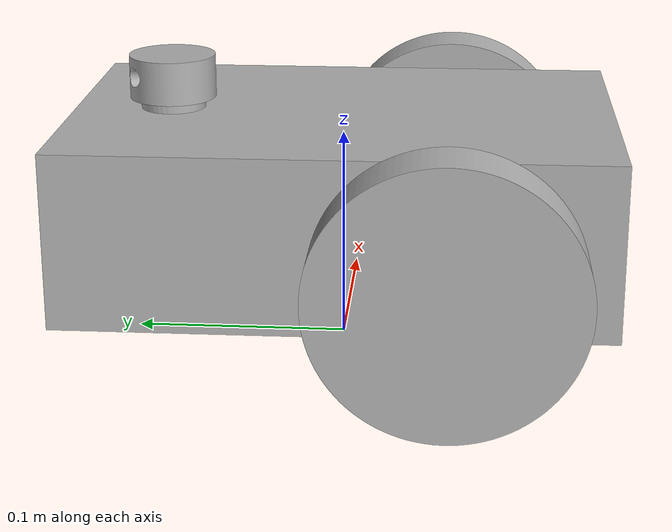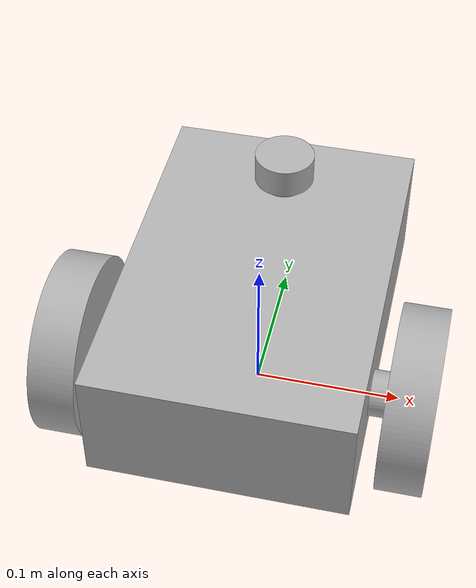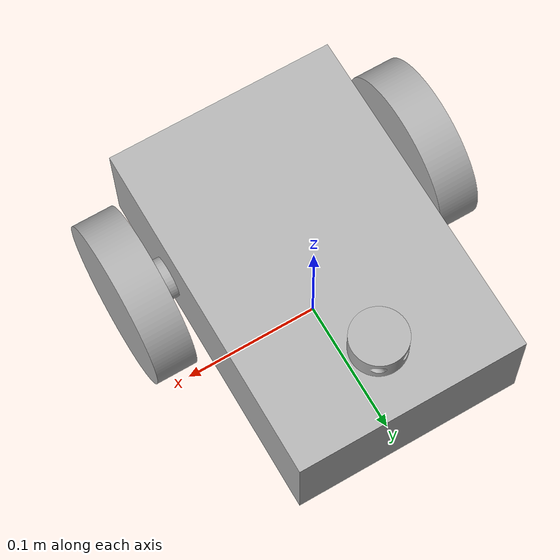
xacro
<?xml version="1.0" ?>
<robot name="neon" xmlns:xacro="http://www.ros.org/wiki/xacro">

  <xacro:include filename="$(find neon_description)/urdf/materials.xacro" />
  <xacro:include filename="$(find neon_description)/urdf/neon.trans" />
  <xacro:include filename="$(find neon_description)/urdf/neon.gazebo" />
  <xacro:include filename="$(find neon_description)/urdf/lidar.xacro" />
  <xacro:include filename="$(find neon_description)/urdf/inertial.xacro" />
  <xacro:include filename="$(find neon_description)/urdf/gazebo_control.xacro" />
  <xacro:gazebo_control />

  <!-- Include the main URDF description -->
  <xacro:include filename="$(find neon_description)/urdf/neon.urdf.xacro" />

</robot>

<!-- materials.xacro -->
<robot name="neon" xmlns:xacro="http://www.ros.org/wiki/xacro" >

<material name="silver">
  <color rgba="0.700 0.700 0.700 1.000"/>
</material>

</robot>

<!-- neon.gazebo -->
<robot name="neon" xmlns:xacro="http://www.ros.org/wiki/xacro" >

<xacro:property name="body_color" value="Gazebo/Silver" />

<gazebo>
  <plugin name="control" filename="libgazebo_ros_control.so"/>
</gazebo>
<gazebo reference="base_link">
  <material>${body_color}</material>
  <mu1>1</mu1>
  <mu2>1</mu2>
  <self_collide>true</self_collide>
  <gravity>true</gravity>
</gazebo>

<gazebo reference="left_wheel_link_1">
  <material>${body_color}</material>
  <mu1>1</mu1>
  <mu2>1</mu2>
  <self_collide>true</self_collide>
</gazebo>

<gazebo reference="right_wheel_link_1">
  <material>${body_color}</material>
  <mu1>1</mu1>
  <mu2>1</mu2>
  <self_collide>true</self_collide>
</gazebo>

<gazebo reference="lidar_link_1">
  <material>${body_color}</material>
  <mu1>1</mu1>
  <mu2>1</mu2>
  <self_collide>true</self_collide>
</gazebo>

</robot>

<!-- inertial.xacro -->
<robot xmlns:xacro="http://www.ros.org/wiki/xacro" >

  <!-- Base Link Inertial -->
  <xacro:macro name="base_link_inertial" params="">
    <inertial>
      <origin xyz="3.428493980213885e-05 0.00027285771811239837 0.07072496870871087" rpy="0 0 0"/>
      <mass value="26.704395059494114"/>
      <inertia ixx="0.153521" iyy="0.077857" izz="0.202277" ixy="4.6e-05" iyz="0.000429" ixz="9e-06"/>
    </inertial>
  </xacro:macro>

  <!-- Left Wheel Inertial -->
  <xacro:macro name="left_wheel_link_1_inertial" params="">
    <inertial>
      <origin xyz="-0.014999578661085491 0 0" rpy="0 0 0"/>
      <mass value="2.663442251713426"/>
      <inertia ixx="0.004794" iyy="0.002597" izz="0.002597" ixy="0.0" iyz="0.0" ixz="0.0"/>
    </inertial>
  </xacro:macro>

  <!-- Right Wheel Inertial -->
  <xacro:macro name="right_wheel_link_1_inertial" params="">
    <inertial>
      <origin xyz="0.015000421338914507 0 0" rpy="0 0 0"/>
      <mass value="2.663442251713426"/>
      <inertia ixx="0.004794" iyy="0.002597" izz="0.002597" ixy="0.0" iyz="0.0" ixz="0.0"/>
    </inertial>
  </xacro:macro>

  <!-- Lidar Link Inertial -->
  <xacro:macro name="lidar_link_1_inertial" params="">
    <inertial>
      <origin xyz="-8.94e-07 -0.0004776 0.0099648" rpy="0 0 0"/>
      <mass value="0.19058022841643052"/>
      <inertia ixx="2.5e-05" iyy="2.6e-05" izz="3.7e-05" ixy="0.0" iyz="0.0" ixz="0.0"/>
    </inertial>
  </xacro:macro>

</robot>

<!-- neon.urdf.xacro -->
<robot name="neon" xmlns:xacro="http://www.ros.org/wiki/xacro">

  <!-- Include inertial macros -->
  <xacro:include filename="$(find neon_description)/urdf/inertial.xacro" />

  <!-- Base Link -->
  <link name="base_link">
    <xacro:base_link_inertial/>
    <visual>
      <origin xyz="0 0 0" rpy="0 0 0"/>
      <geometry>
        <mesh filename="file://$(find neon_description)/meshes/base_link.stl" scale="0.001 0.001 0.001"/>
      </geometry>
      <material name="silver"/>
    </visual>
    <collision>
      <origin xyz="0 0 0" rpy="0 0 0"/>
      <geometry>
        <mesh filename="file://$(find neon_description)/meshes/base_link.stl" scale="0.001 0.001 0.001"/>
      </geometry>
    </collision>
  </link>

  <!-- Left Wheel -->
  <link name="left_wheel_link_1">
    <xacro:left_wheel_link_1_inertial/>
    <visual>
      <origin xyz="0.094132 0.05 -0.061" rpy="0 0 0"/>
      <geometry>
        <mesh filename="file://$(find neon_description)/meshes/left_wheel_link_1.stl" scale="0.001 0.001 0.001"/>
      </geometry>
      <material name="silver"/>
    </visual>
    <collision>
      <origin xyz="0.094132 0.05 -0.061" rpy="0 0 0"/>
      <geometry>
        <mesh filename="file://$(find neon_description)/meshes/left_wheel_link_1.stl" scale="0.001 0.001 0.001"/>
      </geometry>
    </collision>
  </link>

  <!-- Right Wheel -->
  <link name="right_wheel_link_1">
    <xacro:right_wheel_link_1_inertial/>
    <visual>
      <origin xyz="-0.095868 0.05 -0.061" rpy="0 0 0"/>
      <geometry>
        <mesh filename="file://$(find neon_description)/meshes/right_wheel_link_1.stl" scale="0.001 0.001 0.001"/>
      </geometry>
      <material name="silver"/>
    </visual>
    <collision>
      <origin xyz="-0.095868 0.05 -0.061" rpy="0 0 0"/>
      <geometry>
        <mesh filename="file://$(find neon_description)/meshes/right_wheel_link_1.stl" scale="0.001 0.001 0.001"/>
      </geometry>
    </collision>
  </link>

  <!-- Lidar Link -->
  <link name="lidar_link_1">
    <xacro:lidar_link_1_inertial/>
    <visual>
      <origin xyz="0.0 -0.08 -0.116" rpy="0 0 0"/>
      <geometry>
        <mesh filename="file://$(find neon_description)/meshes/lidar_link_1.stl" scale="0.001 0.001 0.001"/>
      </geometry>
      <material name="silver"/>
    </visual>
    <collision>
      <origin xyz="0.0 -0.08 -0.116" rpy="0 0 0"/>
      <geometry>
        <mesh filename="file://$(find neon_description)/meshes/lidar_link_1.stl" scale="0.001 0.001 0.001"/>
      </geometry>
    </collision>
  </link>

  <!-- Joints -->
  <joint name="Revolute_4" type="continuous">
    <origin xyz="-0.094132 -0.05 0.061" rpy="0 0 0"/>
    <parent link="base_link"/>
    <child link="left_wheel_link_1"/>
    <axis xyz="1.0 0.0 0.0"/>
    <limit effort="1.0" velocity="10.0"/>
    <dynamics damping="0.1" friction="0.0"/>
  </joint>

  <joint name="Revolute_5" type="continuous">
    <origin xyz="0.095868 -0.05 0.061" rpy="0 0 0"/>
    <parent link="base_link"/>
    <child link="right_wheel_link_1"/>
    <axis xyz="1.0 0.0 0.0"/>
    <limit effort="1.0" velocity="10.0"/>
    <dynamics damping="0.1" friction="0.0"/>
  </joint>

  <joint name="Rigid_6" type="fixed">
    <origin xyz="0.0 0.08 0.116" rpy="0 0 0"/>
    <parent link="base_link"/>
    <child link="lidar_link_1"/>
  </joint>

  <!-- Lidar Sensor Plugin from lidar.xacro -->
  <xacro:lidar_sensor_plugin lidar_link="lidar_link_1" />

</robot>
